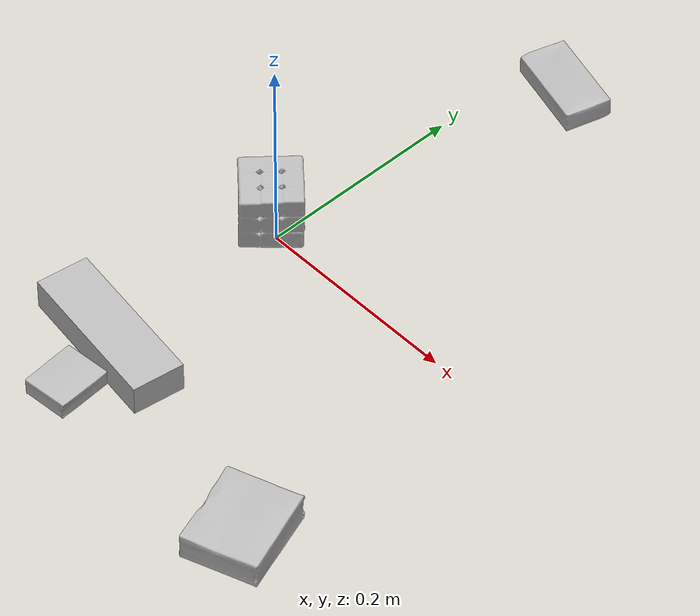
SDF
<sdf version="1.4">
  <world name="default">
    <light name="light1" type="point">
      <pose>0 0 1 0 0 0</pose>
      <diffuse>3 3 3 1</diffuse>
      <specular>3 3 3 1</specular>
    </light>
    <light name="light2" type="point">
      <pose>0 0.5 2 0 0 0</pose>
      <diffuse>1 1 1 1</diffuse>
      <specular>1 1 1 1</specular>
    </light>
    <light name="light3" type="point">
      <pose>0 0.5 2 0 0 0</pose>
      <diffuse>3 3 3 1</diffuse>
      <specular>3 3 3 1</specular>
    </light>
    <scene>
      <ambient>0.7 0.7 0.7</ambient>
    </scene>
    <model name="box1">
      <link name="link_box1">
        <collision name="default">
          <geometry>
            <mesh>
              <uri>model://sugar_box/collision_meshes/collision.obj</uri>
              <scale>0.5 0.5 0.5</scale>
            </mesh>
          </geometry>
          <surface>
            <friction>
              <ode>
                <mu>0.5</mu>
                <mu2>0.5</mu2>
              </ode>
            </friction>
          <contact>
        <ode>
            <max_vel>0</max_vel>
            <min_depth>0.0001</min_depth>
            <kp>1e8</kp>
        </ode>
    </contact></surface>
        </collision>
        <visual name="default">
          <geometry>
            <mesh>
              <uri>model://sugar_box/visual_meshes/visual.dae</uri>
              <scale>0.5 0.5 0.5</scale>
            </mesh>
          </geometry>
        </visual>
        <inertial>
          <mass>0.06211651861667633</mass>
          <pose>0.0005171863595023751 1.9245546354795806e-05 -0.00018182402709499002 -0.00040462630054681676 0.0010506634057476226 0.0026153787889456807</pose>
          <inertia>
            <ixx>1.2938825e-05</ixx>
            <iyy>4.1820942e-05</iyy>
            <izz>5.0064667e-05</izz>
            <ixy>0</ixy>
            <ixz>0</ixz>
            <iyz>0</iyz>
          </inertia>
        </inertial>
      </link>
      <pose>0.04616948589682579 0.30764541029930115 0.011399301700294018 0.00077505153832873 -0.023433173873511008 -0.28921203221470304</pose>
    </model>
    <model name="box2">
      <link name="link_box2">
        <collision name="default">
          <geometry>
            <mesh>
              <uri>model://rubiks_cube/collision_meshes/collision.obj</uri>
              <scale>1.0 1.0 1.0</scale>
            </mesh>
          </geometry>
          <surface>
            <friction>
              <ode>
                <mu>0.5</mu>
                <mu2>0.5</mu2>
              </ode>
            </friction>
          <contact>
        <ode>
            <max_vel>0</max_vel>
            <min_depth>0.0001</min_depth>
            <kp>1e8</kp>
        </ode>
    </contact></surface>
        </collision>
        <visual name="default">
          <geometry>
            <mesh>
              <uri>model://rubiks_cube/visual_meshes/visual.dae</uri>
              <scale>1.0 1.0 1.0</scale>
            </mesh>
          </geometry>
        </visual>
        <inertial>
          <mass>0.2700360119342804</mass>
          <pose>2.6721041649580002e-05 5.256967051536776e-05 -7.264316536748083e-06 -0.05467324422766238 -0.0981422115654675 -0.034454566623261795</pose>
          <inertia>
            <ixx>0.00014921304</ixx>
            <iyy>0.00014851718</iyy>
            <izz>0.00015044949</izz>
            <ixy>0</ixy>
            <ixz>0</ixz>
            <iyz>0</iyz>
          </inertia>
        </inertial>
      </link>
      <pose>-0.0146253677085042 0.007575825322419405 0.028678983449935913 -3.556613025209409e-06 -1.090970142943163e-06 -2.2928038251286487</pose>
    </model>
    <model name="box3">
      <link name="link_box3">
        <collision name="default">
          <geometry>
            <mesh>
              <uri>model://jenga/collision_meshes/collision.obj</uri>
              <scale>1.0 1.0 1.0</scale>
            </mesh>
          </geometry>
          <surface>
            <friction>
              <ode>
                <mu>0.5</mu>
                <mu2>0.5</mu2>
              </ode>
            </friction>
          <contact>
        <ode>
            <max_vel>0</max_vel>
            <min_depth>0.0001</min_depth>
            <kp>1e8</kp>
        </ode>
    </contact></surface>
        </collision>
        <visual name="default">
          <geometry>
            <mesh>
              <uri>model://jenga/visual_meshes/visual.dae</uri>
              <scale>1.0 1.0 1.0</scale>
            </mesh>
          </geometry>
        </visual>
        <inertial>
          <mass>0.12586519122123718</mass>
          <pose>-2.502855807051674e-07 -0.00010250010382151231 -4.0923401684267446e-05 0.0 -7.342154049184251e-07 0.0</pose>
          <inertia>
            <ixx>3.482995e-05</ixx>
            <iyy>0.0002360068</iyy>
            <izz>0.00025195733</izz>
            <ixy>0</ixy>
            <ixz>0</ixz>
            <iyz>0</iyz>
          </inertia>
        </inertial>
      </link>
      <pose>-0.002742083976045251 -0.18908251821994781 0.01499998476356268 -3.196473138588964e-06 2.394547499080436e-07 -0.1428952945882216</pose>
    </model>
    <model name="box4">
      <link name="link_box4">
        <collision name="default">
          <geometry>
            <mesh>
              <uri>model://gelatin_box/collision_meshes/collision.obj</uri>
              <scale>1.0 1.0 1.0</scale>
            </mesh>
          </geometry>
          <surface>
            <friction>
              <ode>
                <mu>0.5</mu>
                <mu2>0.5</mu2>
              </ode>
            </friction>
          <contact>
        <ode>
            <max_vel>0</max_vel>
            <min_depth>0.0001</min_depth>
            <kp>1e8</kp>
        </ode>
    </contact></surface>
        </collision>
        <visual name="default">
          <geometry>
            <mesh>
              <uri>model://gelatin_box/visual_meshes/visual.dae</uri>
              <scale>1.0 1.0 1.0</scale>
            </mesh>
          </geometry>
        </visual>
        <inertial>
          <mass>0.0925464928150177</mass>
          <pose>0.0004319618456065655 0.00011156871914863586 -0.0003640321083366871 -0.0010503719798216618 -0.004755819622564704 0.01644055760929568</pose>
          <inertia>
            <ixx>6.533027e-05</ixx>
            <iyy>4.6665074e-05</iyy>
            <izz>9.9447236e-05</izz>
            <ixy>0</ixy>
            <ixz>0</ixz>
            <iyz>0</iyz>
          </inertia>
        </inertial>
      </link>
      <pose>0.22943803668022156 -0.24896438419818878 0.01516831573098898 0.005596728004037638 -0.0073037754727423645 -2.801314334018055</pose>
    </model>
    <model name="box5">
      <link name="link_box5">
        <collision name="default">
          <geometry>
            <mesh>
              <uri>model://pudding_box/collision_meshes/collision.obj</uri>
              <scale>0.5 0.5 0.5</scale>
            </mesh>
          </geometry>
          <surface>
            <friction>
              <ode>
                <mu>0.5</mu>
                <mu2>0.5</mu2>
              </ode>
            </friction>
          <contact>
        <ode>
            <max_vel>0</max_vel>
            <min_depth>0.0001</min_depth>
            <kp>1e8</kp>
        </ode>
    </contact></surface>
        </collision>
        <visual name="default">
          <geometry>
            <mesh>
              <uri>model://pudding_box/visual_meshes/visual.dae</uri>
              <scale>0.5 0.5 0.5</scale>
            </mesh>
          </geometry>
        </visual>
        <inertial>
          <mass>0.0266704261302948</mass>
          <pose>0.00024474109522998333 0.00040339428232982755 -0.0002594413817860186 0.005213101812636465 -0.006603797316727521 0.020079823300208206</pose>
          <inertia>
            <ixx>7.5373864e-06</ixx>
            <iyy>5.0712065e-06</iyy>
            <izz>1.113092e-05</izz>
            <ixy>0</ixy>
            <ixz>0</ixz>
            <iyz>0</iyz>
          </inertia>
        </inertial>
      </link>
      <pose>0.008545299991965294 -0.2482619285583496 0.00986291840672493 0.022340657128114016 -0.011380065958527258 -3.041427854211723</pose>
    </model>
  <physics type="ode">
      <max_contacts>50</max_contacts>
      <ode>
        <solver>
          <type>quick</type>
          <iters>75</iters>
        </solver>
        <constraints>
          <contact_max_correcting_vel>0</contact_max_correcting_vel>
          <contact_surface_layer>0</contact_surface_layer>
        </constraints>
      </ode>
    </physics></world>
</sdf>
